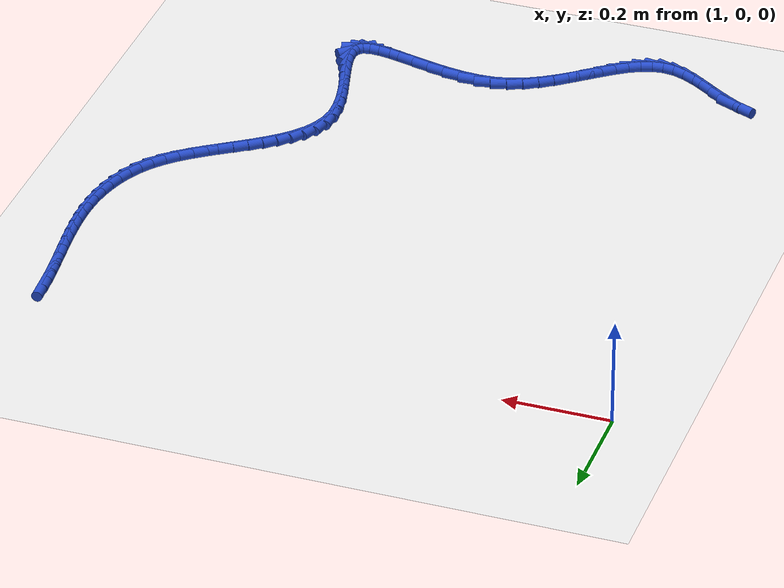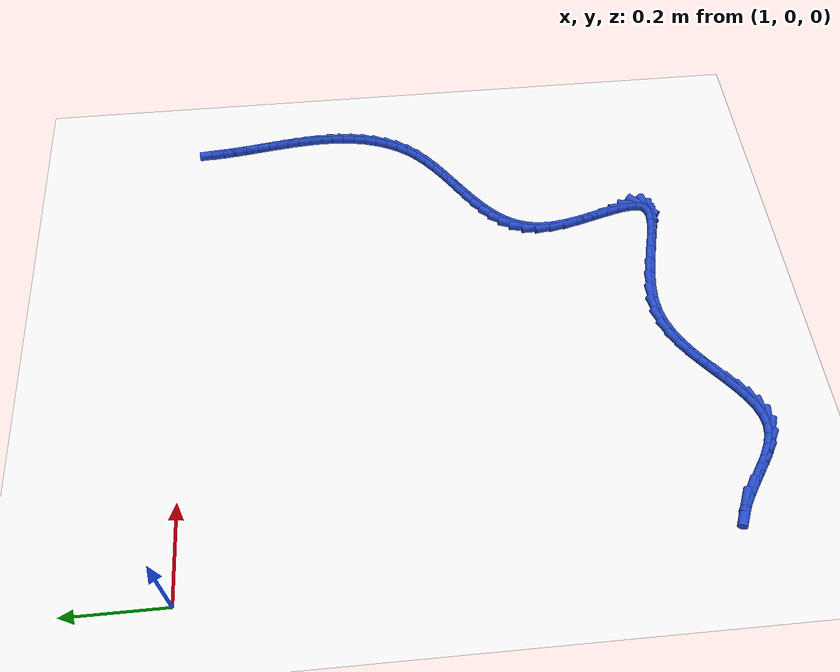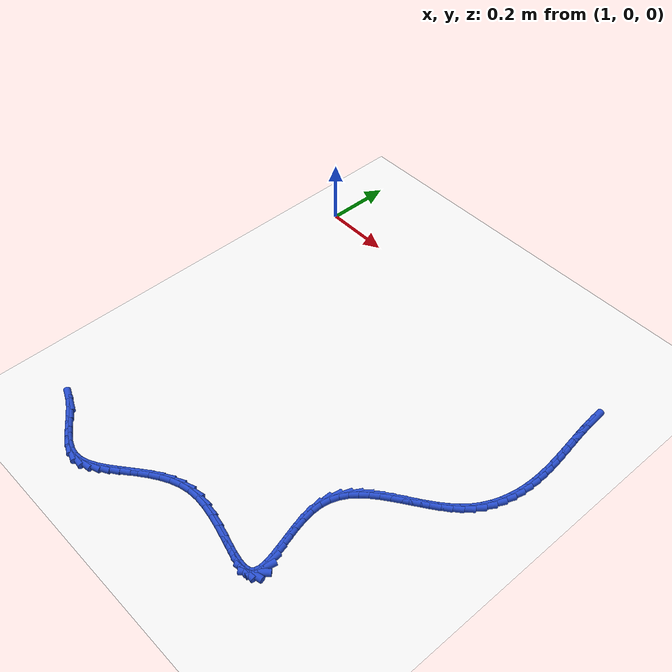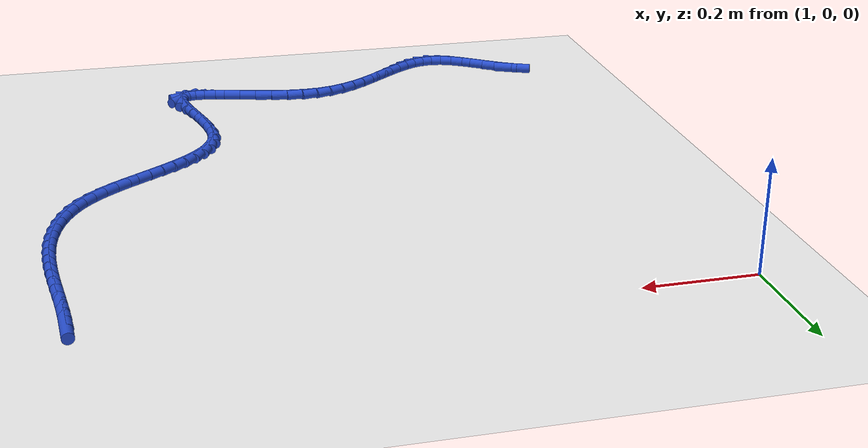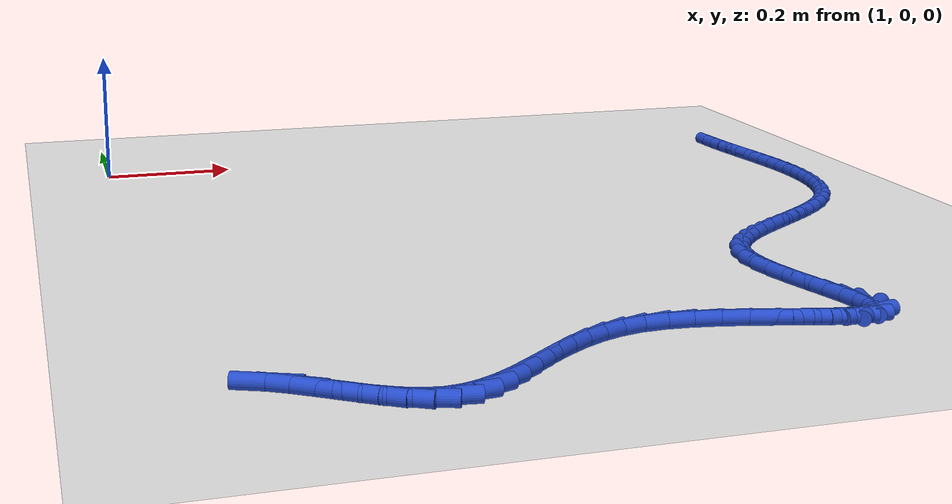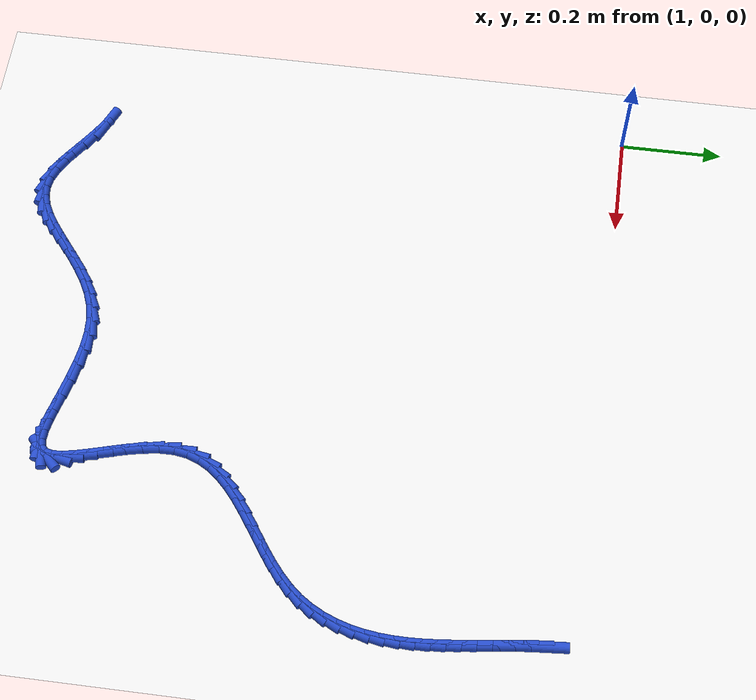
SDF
<sdf version="1.6">
 <world name="default">
  <model name="ground_plane">
   <static>1</static>
   <link name="link">
    <collision name="collision">
     <geometry><plane><normal>0 0 1</normal><size>100 100</size></plane></geometry>
     <surface><friction><ode><mu>100</mu><mu2>50</mu2></ode></friction></surface>
    </collision>
    <visual name="visual">
     <cast_shadows>0</cast_shadows>
     <geometry><plane><normal>0 0 1</normal><size>100 100</size></plane></geometry>
     <material>
      <script><uri>file://media/materials/scripts/gazebo.material</uri><name>Gazebo/WhiteGlow</name></script>
     </material>
    </visual>
   </link>
  </model>
  <model name="line">
   <link name="link_137">
    <pose>2.0745335759756256 -0.06236355920596012 0.01 0 1.57 -1.4945938777242755</pose>
    <collision name="collision">
     <geometry><cylinder><radius>0.01</radius><length>0.08</length></cylinder></geometry>
    </collision>
    <visual name="visual">
     <material>
      <script><name>Gazebo/Blue</name><uri>file://media/materials/scripts/gazebo.material</uri></script>
     </material>
     <geometry><cylinder><radius>0.01</radius><length>0.08</length></cylinder></geometry>
    </visual>
   </link>
   <link name="link_138">
    <pose>2.0765773488030557 -0.08913192930859712 0.01 0 1.57 -1.4675413451723505</pose>
    <collision name="collision">
     <geometry><cylinder><radius>0.01</radius><length>0.08</length></cylinder></geometry>
    </collision>
    <visual name="visual">
     <material>
      <script><name>Gazebo/Blue</name><uri>file://media/materials/scripts/gazebo.material</uri></script>
     </material>
     <geometry><cylinder><radius>0.01</radius><length>0.08</length></cylinder></geometry>
    </visual>
   </link>
   <link name="link_139">
    <pose>2.079357193971397 -0.1159583245571494 0.01 0 1.57 -1.4496637124600082</pose>
    <collision name="collision">
     <geometry><cylinder><radius>0.01</radius><length>0.08</length></cylinder></geometry>
    </collision>
    <visual name="visual">
     <material>
      <script><name>Gazebo/Blue</name><uri>file://media/materials/scripts/gazebo.material</uri></script>
     </material>
     <geometry><cylinder><radius>0.01</radius><length>0.08</length></cylinder></geometry>
    </visual>
   </link>
   <link name="link_140">
    <pose>2.082626961753343 -0.14281946001180876 0.01 0 1.57 -1.4407857080998465</pose>
    <collision name="collision">
     <geometry><cylinder><radius>0.01</radius><length>0.08</length></cylinder></geometry>
    </collision>
    <visual name="visual">
     <material>
      <script><name>Gazebo/Blue</name><uri>file://media/materials/scripts/gazebo.material</uri></script>
     </material>
     <geometry><cylinder><radius>0.01</radius><length>0.08</length></cylinder></geometry>
    </visual>
   </link>
   <link name="link_141">
    <pose>2.0861405024215856 -0.1696920507327658 0.01 0 1.57 -1.4408160938373828</pose>
    <collision name="collision">
     <geometry><cylinder><radius>0.01</radius><length>0.08</length></cylinder></geometry>
    </collision>
    <visual name="visual">
     <material>
      <script><name>Gazebo/Blue</name><uri>file://media/materials/scripts/gazebo.material</uri></script>
     </material>
     <geometry><cylinder><radius>0.01</radius><length>0.08</length></cylinder></geometry>
    </visual>
   </link>
   <link name="link_142">
    <pose>2.0896516662488165 -0.1965528117802123 0.01 0 1.57 -1.4497669529349773</pose>
    <collision name="collision">
     <geometry><cylinder><radius>0.01</radius><length>0.08</length></cylinder></geometry>
    </collision>
    <visual name="visual">
     <material>
      <script><name>Gazebo/Blue</name><uri>file://media/materials/scripts/gazebo.material</uri></script>
     </material>
     <geometry><cylinder><radius>0.01</radius><length>0.08</length></cylinder></geometry>
    </visual>
   </link>
   <link name="link_143">
    <pose>2.092914303507729 -0.22337845821433977 0.01 0 1.57 -1.4677540689173079</pose>
    <collision name="collision">
     <geometry><cylinder><radius>0.01</radius><length>0.08</length></cylinder></geometry>
    </collision>
    <visual name="visual">
     <material>
      <script><name>Gazebo/Blue</name><uri>file://media/materials/scripts/gazebo.material</uri></script>
     </material>
     <geometry><cylinder><radius>0.01</radius><length>0.08</length></cylinder></geometry>
    </visual>
   </link>
   <link name="link_144">
    <pose>2.095682264471015 -0.2501457050953394 0.01 0 1.57 -1.4949782057749854</pose>
    <collision name="collision">
     <geometry><cylinder><radius>0.01</radius><length>0.08</length></cylinder></geometry>
    </collision>
    <visual name="visual">
     <material>
      <script><name>Gazebo/Blue</name><uri>file://media/materials/scripts/gazebo.material</uri></script>
     </material>
     <geometry><cylinder><radius>0.01</radius><length>0.08</length></cylinder></geometry>
    </visual>
   </link>
   <link name="link_145">
    <pose>2.097709399411366 -0.27683126748340275 0.01 0 1.57 -1.531684003943477</pose>
    <collision name="collision">
     <geometry><cylinder><radius>0.01</radius><length>0.08</length></cylinder></geometry>
    </collision>
    <visual name="visual">
     <material>
      <script><name>Gazebo/Blue</name><uri>file://media/materials/scripts/gazebo.material</uri></script>
     </material>
     <geometry><cylinder><radius>0.01</radius><length>0.08</length></cylinder></geometry>
    </visual>
   </link>
   <link name="link_146">
    <pose>2.098749558601476 -0.30341186043872204 0.01 0 1.57 1.5635015893545938</pose>
    <collision name="collision">
     <geometry><cylinder><radius>0.01</radius><length>0.08</length></cylinder></geometry>
    </collision>
    <visual name="visual">
     <material>
      <script><name>Gazebo/Blue</name><uri>file://media/materials/scripts/gazebo.material</uri></script>
     </material>
     <geometry><cylinder><radius>0.01</radius><length>0.08</length></cylinder></geometry>
    </visual>
   </link>
   <link name="link_147">
    <pose>2.0985565923140364 -0.329864199021487 0.01 0 1.57 1.507300403059409</pose>
    <collision name="collision">
     <geometry><cylinder><radius>0.01</radius><length>0.08</length></cylinder></geometry>
    </collision>
    <visual name="visual">
     <material>
      <script><name>Gazebo/Blue</name><uri>file://media/materials/scripts/gazebo.material</uri></script>
     </material>
     <geometry><cylinder><radius>0.01</radius><length>0.08</length></cylinder></geometry>
    </visual>
   </link>
   <link name="link_148">
    <pose>2.0968843508217394 -0.35616499829188975 0.01 0 1.57 1.4414727798368918</pose>
    <collision name="collision">
     <geometry><cylinder><radius>0.01</radius><length>0.08</length></cylinder></geometry>
    </collision>
    <visual name="visual">
     <material>
      <script><name>Gazebo/Blue</name><uri>file://media/materials/scripts/gazebo.material</uri></script>
     </material>
     <geometry><cylinder><radius>0.01</radius><length>0.08</length></cylinder></geometry>
    </visual>
   </link>
   <link name="link_149">
    <pose>2.093486684397278 -0.3822909733101218 0.01 0 1.57 1.3666255447218387</pose>
    <collision name="collision">
     <geometry><cylinder><radius>0.01</radius><length>0.08</length></cylinder></geometry>
    </collision>
    <visual name="visual">
     <material>
      <script><name>Gazebo/Blue</name><uri>file://media/materials/scripts/gazebo.material</uri></script>
     </material>
     <geometry><cylinder><radius>0.01</radius><length>0.08</length></cylinder></geometry>
    </visual>
   </link>
   <link name="link_150">
    <pose>2.0881196257879533 -0.4082117927885201 0.01 0 1.57 1.2838967339224017</pose>
    <collision name="collision">
     <geometry><cylinder><radius>0.01</radius><length>0.08</length></cylinder></geometry>
    </collision>
    <visual name="visual">
     <material>
      <script><name>Gazebo/Blue</name><uri>file://media/materials/scripts/gazebo.material</uri></script>
     </material>
     <geometry><cylinder><radius>0.01</radius><length>0.08</length></cylinder></geometry>
    </visual>
   </link>
   <link name="link_151">
    <pose>2.0805862826034613 -0.43374513931588143 0.01 0 1.57 1.1929212636502478</pose>
    <collision name="collision">
     <geometry><cylinder><radius>0.01</radius><length>0.08</length></cylinder></geometry>
    </collision>
    <visual name="visual">
     <material>
      <script><name>Gazebo/Blue</name><uri>file://media/materials/scripts/gazebo.material</uri></script>
     </material>
     <geometry><cylinder><radius>0.01</radius><length>0.08</length></cylinder></geometry>
    </visual>
   </link>
   <link name="link_152">
    <pose>2.0707351655181547 -0.45856210693154487 0.01 0 1.57 1.0925908687111168</pose>
    <collision name="collision">
     <geometry><cylinder><radius>0.01</radius><length>0.08</length></cylinder></geometry>
    </collision>
    <visual name="visual">
     <material>
      <script><name>Gazebo/Blue</name><uri>file://media/materials/scripts/gazebo.material</uri></script>
     </material>
     <geometry><cylinder><radius>0.01</radius><length>0.08</length></cylinder></geometry>
    </visual>
   </link>
   <link name="link_153">
    <pose>2.0584166331843936 -0.4823278232843032 0.01 0 1.57 0.9823032446369511</pose>
    <collision name="collision">
     <geometry><cylinder><radius>0.01</radius><length>0.08</length></cylinder></geometry>
    </collision>
    <visual name="visual">
     <material>
      <script><name>Gazebo/Blue</name><uri>file://media/materials/scripts/gazebo.material</uri></script>
     </material>
     <geometry><cylinder><radius>0.01</radius><length>0.08</length></cylinder></geometry>
    </visual>
   </link>
   <link name="link_154">
    <pose>2.0434810442545412 -0.5047074160229496 0.01 0 1.57 0.8655611623064244</pose>
    <collision name="collision">
     <geometry><cylinder><radius>0.01</radius><length>0.08</length></cylinder></geometry>
    </collision>
    <visual name="visual">
     <material>
      <script><name>Gazebo/Blue</name><uri>file://media/materials/scripts/gazebo.material</uri></script>
     </material>
     <geometry><cylinder><radius>0.01</radius><length>0.08</length></cylinder></geometry>
    </visual>
   </link>
   <link name="link_155">
    <pose>2.0258436305837217 -0.525426179032048 0.01 0 1.57 0.7657281394973803</pose>
    <collision name="collision">
     <geometry><cylinder><radius>0.01</radius><length>0.08</length></cylinder></geometry>
    </collision>
    <visual name="visual">
     <material>
      <script><name>Gazebo/Blue</name><uri>file://media/materials/scripts/gazebo.material</uri></script>
     </material>
     <geometry><cylinder><radius>0.01</radius><length>0.08</length></cylinder></geometry>
    </visual>
   </link>
   <link name="link_156">
    <pose>2.005871059837162 -0.544628087442473 0.01 0 1.57 0.6915455375175421</pose>
    <collision name="collision">
     <geometry><cylinder><radius>0.01</radius><length>0.08</length></cylinder></geometry>
    </collision>
    <visual name="visual">
     <material>
      <script><name>Gazebo/Blue</name><uri>file://media/materials/scripts/gazebo.material</uri></script>
     </material>
     <geometry><cylinder><radius>0.01</radius><length>0.08</length></cylinder></geometry>
    </visual>
   </link>
   <link name="link_157">
    <pose>1.9841218685797717 -0.5626350639653599 0.01 0 1.57 0.6409796865034896</pose>
    <collision name="collision">
     <geometry><cylinder><radius>0.01</radius><length>0.08</length></cylinder></geometry>
    </collision>
    <visual name="visual">
     <material>
      <script><name>Gazebo/Blue</name><uri>file://media/materials/scripts/gazebo.material</uri></script>
     </material>
     <geometry><cylinder><radius>0.01</radius><length>0.08</length></cylinder></geometry>
    </visual>
   </link>
   <link name="link_158">
    <pose>1.961155295473695 -0.5797696824674169 0.01 0 1.57 0.6120750243569582</pose>
    <collision name="collision">
     <geometry><cylinder><radius>0.01</radius><length>0.08</length></cylinder></geometry>
    </collision>
    <visual name="visual">
     <material>
      <script><name>Gazebo/Blue</name><uri>file://media/materials/scripts/gazebo.material</uri></script>
     </material>
     <geometry><cylinder><radius>0.01</radius><length>0.08</length></cylinder></geometry>
    </visual>
   </link>
   <link name="link_159">
    <pose>1.9375305791810735 -0.5963545168153512 0.01 0 1.57 0.6036495256506235</pose>
    <collision name="collision">
     <geometry><cylinder><radius>0.01</radius><length>0.08</length></cylinder></geometry>
    </collision>
    <visual name="visual">
     <material>
      <script><name>Gazebo/Blue</name><uri>file://media/materials/scripts/gazebo.material</uri></script>
     </material>
     <geometry><cylinder><radius>0.01</radius><length>0.08</length></cylinder></geometry>
    </visual>
   </link>
   <link name="link_160">
    <pose>1.9138069583640493 -0.612712140875871 0.01 0 1.57 0.6155759876270306</pose>
    <collision name="collision">
     <geometry><cylinder><radius>0.01</radius><length>0.08</length></cylinder></geometry>
    </collision>
    <visual name="visual">
     <material>
      <script><name>Gazebo/Blue</name><uri>file://media/materials/scripts/gazebo.material</uri></script>
     </material>
     <geometry><cylinder><radius>0.01</radius><length>0.08</length></cylinder></geometry>
    </visual>
   </link>
   <link name="link_161">
    <pose>1.8905436716847646 -0.6291651285156834 0.01 0 1.57 0.648892355923633</pose>
    <collision name="collision">
     <geometry><cylinder><radius>0.01</radius><length>0.08</length></cylinder></geometry>
    </collision>
    <visual name="visual">
     <material>
      <script><name>Gazebo/Blue</name><uri>file://media/materials/scripts/gazebo.material</uri></script>
     </material>
     <geometry><cylinder><radius>0.01</radius><length>0.08</length></cylinder></geometry>
    </visual>
   </link>
   <link name="link_162">
    <pose>1.8682999578053607 -0.646036053601496 0.01 0 1.57 0.7057925013628743</pose>
    <collision name="collision">
     <geometry><cylinder><radius>0.01</radius><length>0.08</length></cylinder></geometry>
    </collision>
    <visual name="visual">
     <material>
      <script><name>Gazebo/Blue</name><uri>file://media/materials/scripts/gazebo.material</uri></script>
     </material>
     <geometry><cylinder><radius>0.01</radius><length>0.08</length></cylinder></geometry>
    </visual>
   </link>
   <link name="link_163">
    <pose>1.8476350553879815 -0.663647490000017 0.01 0 1.57 0.7893676003772085</pose>
    <collision name="collision">
     <geometry><cylinder><radius>0.01</radius><length>0.08</length></cylinder></geometry>
    </collision>
    <visual name="visual">
     <material>
      <script><name>Gazebo/Blue</name><uri>file://media/materials/scripts/gazebo.material</uri></script>
     </material>
     <geometry><cylinder><radius>0.01</radius><length>0.08</length></cylinder></geometry>
    </visual>
   </link>
   <link name="link_164">
    <pose>1.8291082030947674 -0.6823220115779541 0.01 0 1.57 0.902734851250536</pose>
    <collision name="collision">
     <geometry><cylinder><radius>0.01</radius><length>0.08</length></cylinder></geometry>
    </collision>
    <visual name="visual">
     <material>
      <script><name>Gazebo/Blue</name><uri>file://media/materials/scripts/gazebo.material</uri></script>
     </material>
     <geometry><cylinder><radius>0.01</radius><length>0.08</length></cylinder></geometry>
    </visual>
   </link>
   <link name="link_165">
    <pose>1.8132786395878622 -0.7023821922020141 0.01 0 1.57 1.0470240381447347</pose>
    <collision name="collision">
     <geometry><cylinder><radius>0.01</radius><length>0.08</length></cylinder></geometry>
    </collision>
    <visual name="visual">
     <material>
      <script><name>Gazebo/Blue</name><uri>file://media/materials/scripts/gazebo.material</uri></script>
     </material>
     <geometry><cylinder><radius>0.01</radius><length>0.08</length></cylinder></geometry>
    </visual>
   </link>
   <link name="link_166">
    <pose>1.8007056035294073 -0.7241506057389051 0.01 0 1.57 1.2182079229833485</pose>
    <collision name="collision">
     <geometry><cylinder><radius>0.01</radius><length>0.08</length></cylinder></geometry>
    </collision>
    <visual name="visual">
     <material>
      <script><name>Gazebo/Blue</name><uri>file://media/materials/scripts/gazebo.material</uri></script>
     </material>
     <geometry><cylinder><radius>0.01</radius><length>0.08</length></cylinder></geometry>
    </visual>
   </link>
   <link name="link_167">
    <pose>1.7919483335815458 -0.7479498260553349 0.01 0 1.57 1.4047735519644224</pose>
    <collision name="collision">
     <geometry><cylinder><radius>0.01</radius><length>0.08</length></cylinder></geometry>
    </collision>
    <visual name="visual">
     <material>
      <script><name>Gazebo/Blue</name><uri>file://media/materials/scripts/gazebo.material</uri></script>
     </material>
     <geometry><cylinder><radius>0.01</radius><length>0.08</length></cylinder></geometry>
    </visual>
   </link>
   <link name="link_168">
    <pose>1.7875660684064185 -0.7741024270180109 0.01 0 1.57 -1.559645621369168</pose>
    <collision name="collision">
     <geometry><cylinder><radius>0.01</radius><length>0.08</length></cylinder></geometry>
    </collision>
    <visual name="visual">
     <material>
      <script><name>Gazebo/Blue</name><uri>file://media/materials/scripts/gazebo.material</uri></script>
     </material>
     <geometry><cylinder><radius>0.01</radius><length>0.08</length></cylinder></geometry>
    </visual>
   </link>
   <link name="link_169">
    <pose>1.7878856354129897 -0.8027601441275743 0.01 0 1.57 -1.4349099387202604</pose>
    <collision name="collision">
     <geometry><cylinder><radius>0.01</radius><length>0.08</length></cylinder></geometry>
    </collision>
    <visual name="visual">
     <material>
      <script><name>Gazebo/Blue</name><uri>file://media/materials/scripts/gazebo.material</uri></script>
     </material>
     <geometry><cylinder><radius>0.01</radius><length>0.08</length></cylinder></geometry>
    </visual>
   </link>
   <link name="link_170">
    <pose>1.7920480662846836 -0.8332030709074852 0.01 0 1.57 -1.3573539769966743</pose>
    <collision name="collision">
     <geometry><cylinder><radius>0.01</radius><length>0.08</length></cylinder></geometry>
    </collision>
    <visual name="visual">
     <material>
      <script><name>Gazebo/Blue</name><uri>file://media/materials/scripts/gazebo.material</uri></script>
     </material>
     <geometry><cylinder><radius>0.01</radius><length>0.08</length></cylinder></geometry>
    </visual>
   </link>
   <link name="link_171">
    <pose>1.7988171832416562 -0.8644340258031333 0.01 0 1.57 -1.3142003395236406</pose>
    <collision name="collision">
     <geometry><cylinder><radius>0.01</radius><length>0.08</length></cylinder></geometry>
    </collision>
    <visual name="visual">
     <material>
      <script><name>Gazebo/Blue</name><uri>file://media/materials/scripts/gazebo.material</uri></script>
     </material>
     <geometry><cylinder><radius>0.01</radius><length>0.08</length></cylinder></geometry>
    </visual>
   </link>
   <link name="link_172">
    <pose>1.8069566505353076 -0.8954557111419326 0.01 0 1.57 -1.3001140200780574</pose>
    <collision name="collision">
     <geometry><cylinder><radius>0.01</radius><length>0.08</length></cylinder></geometry>
    </collision>
    <visual name="visual">
     <material>
      <script><name>Gazebo/Blue</name><uri>file://media/materials/scripts/gazebo.material</uri></script>
     </material>
     <geometry><cylinder><radius>0.01</radius><length>0.08</length></cylinder></geometry>
    </visual>
   </link>
   <link name="link_173">
    <pose>1.8152301324170386 -0.9252708292512986 0.01 0 1.57 -1.3166917089074501</pose>
    <collision name="collision">
     <geometry><cylinder><radius>0.01</radius><length>0.08</length></cylinder></geometry>
    </collision>
    <visual name="visual">
     <material>
      <script><name>Gazebo/Blue</name><uri>file://media/materials/scripts/gazebo.material</uri></script>
     </material>
     <geometry><cylinder><radius>0.01</radius><length>0.08</length></cylinder></geometry>
    </visual>
   </link>
   <link name="link_174">
    <pose>1.822401293138247 -0.9528820824586424 0.01 0 1.57 -1.375351945133391</pose>
    <collision name="collision">
     <geometry><cylinder><radius>0.01</radius><length>0.08</length></cylinder></geometry>
    </collision>
    <visual name="visual">
     <material>
      <script><name>Gazebo/Blue</name><uri>file://media/materials/scripts/gazebo.material</uri></script>
     </material>
     <geometry><cylinder><radius>0.01</radius><length>0.08</length></cylinder></geometry>
    </visual>
   </link>
   <link name="link_175">
    <pose>1.8272337969503336 -0.9772921730913797 0.01 0 1.57 -1.5086592162196222</pose>
    <collision name="collision">
     <geometry><cylinder><radius>0.01</radius><length>0.08</length></cylinder></geometry>
    </collision>
    <visual name="visual">
     <material>
      <script><name>Gazebo/Blue</name><uri>file://media/materials/scripts/gazebo.material</uri></script>
     </material>
     <geometry><cylinder><radius>0.01</radius><length>0.08</length></cylinder></geometry>
    </visual>
   </link>
   <link name="link_176">
    <pose>1.828491308104698 -0.9975038034769244 0.01 0 1.57 1.3384016794537044</pose>
    <collision name="collision">
     <geometry><cylinder><radius>0.01</radius><length>0.08</length></cylinder></geometry>
    </collision>
    <visual name="visual">
     <material>
      <script><name>Gazebo/Blue</name><uri>file://media/materials/scripts/gazebo.material</uri></script>
     </material>
     <geometry><cylinder><radius>0.01</radius><length>0.08</length></cylinder></geometry>
    </visual>
   </link>
   <link name="link_177">
    <pose>1.8249374908527396 -1.01251967594269 0.01 0 1.57 0.7641122443018337</pose>
    <collision name="collision">
     <geometry><cylinder><radius>0.01</radius><length>0.08</length></cylinder></geometry>
    </collision>
    <visual name="visual">
     <material>
      <script><name>Gazebo/Blue</name><uri>file://media/materials/scripts/gazebo.material</uri></script>
     </material>
     <geometry><cylinder><radius>0.01</radius><length>0.08</length></cylinder></geometry>
    </visual>
   </link>
   <link name="link_178">
    <pose>1.8155264959123851 -1.0215383198235188 0.01 0 1.57 0.231039200783923</pose>
    <collision name="collision">
     <geometry><cylinder><radius>0.01</radius><length>0.08</length></cylinder></geometry>
    </collision>
    <visual name="visual">
     <material>
      <script><name>Gazebo/Blue</name><uri>file://media/materials/scripts/gazebo.material</uri></script>
     </material>
     <geometry><cylinder><radius>0.01</radius><length>0.08</length></cylinder></geometry>
    </visual>
   </link>
   <link name="link_179">
    <pose>1.8004930829073578 -1.0250747769303425 0.01 0 1.57 -0.04461706613141823</pose>
    <collision name="collision">
     <geometry><cylinder><radius>0.01</radius><length>0.08</length></cylinder></geometry>
    </collision>
    <visual name="visual">
     <material>
      <script><name>Gazebo/Blue</name><uri>file://media/materials/scripts/gazebo.material</uri></script>
     </material>
     <geometry><cylinder><radius>0.01</radius><length>0.08</length></cylinder></geometry>
    </visual>
   </link>
   <link name="link_180">
    <pose>1.7805997315772453 -1.0241866045237928 0.01 0 1.57 -0.17548756314425049</pose>
    <collision name="collision">
     <geometry><cylinder><radius>0.01</radius><length>0.08</length></cylinder></geometry>
    </collision>
    <visual name="visual">
     <material>
      <script><name>Gazebo/Blue</name><uri>file://media/materials/scripts/gazebo.material</uri></script>
     </material>
     <geometry><cylinder><radius>0.01</radius><length>0.08</length></cylinder></geometry>
    </visual>
   </link>
   <link name="link_181">
    <pose>1.756610566134944 -1.0199330504428006 0.01 0 1.57 -0.23563782092709876</pose>
    <collision name="collision">
     <geometry><cylinder><radius>0.01</radius><length>0.08</length></cylinder></geometry>
    </collision>
    <visual name="visual">
     <material>
      <script><name>Gazebo/Blue</name><uri>file://media/materials/scripts/gazebo.material</uri></script>
     </material>
     <geometry><cylinder><radius>0.01</radius><length>0.08</length></cylinder></geometry>
    </visual>
   </link>
   <link name="link_182">
    <pose>1.7292897107933516 -1.0133733625262993 0.01 0 1.57 -0.25548292432972836</pose>
    <collision name="collision">
     <geometry><cylinder><radius>0.01</radius><length>0.08</length></cylinder></geometry>
    </collision>
    <visual name="visual">
     <material>
      <script><name>Gazebo/Blue</name><uri>file://media/materials/scripts/gazebo.material</uri></script>
     </material>
     <geometry><cylinder><radius>0.01</radius><length>0.08</length></cylinder></geometry>
    </visual>
   </link>
   <link name="link_183">
    <pose>1.6994012897653654 -1.0055667886132207 0.01 0 1.57 -0.24709339926316118</pose>
    <collision name="collision">
     <geometry><cylinder><radius>0.01</radius><length>0.08</length></cylinder></geometry>
    </collision>
    <visual name="visual">
     <material>
      <script><name>Gazebo/Blue</name><uri>file://media/materials/scripts/gazebo.material</uri></script>
     </material>
     <geometry><cylinder><radius>0.01</radius><length>0.08</length></cylinder></geometry>
    </visual>
   </link>
   <link name="link_184">
    <pose>1.6677094272638822 -0.9975725765424973 0.01 0 1.57 -0.21426863622135844</pose>
    <collision name="collision">
     <geometry><cylinder><radius>0.01</radius><length>0.08</length></cylinder></geometry>
    </collision>
    <visual name="visual">
     <material>
      <script><name>Gazebo/Blue</name><uri>file://media/materials/scripts/gazebo.material</uri></script>
     </material>
     <geometry><cylinder><radius>0.01</radius><length>0.08</length></cylinder></geometry>
    </visual>
   </link>
   <link name="link_185">
    <pose>1.6349782475017978 -0.9904499741530614 0.01 0 1.57 -0.1560168948359555</pose>
    <collision name="collision">
     <geometry><cylinder><radius>0.01</radius><length>0.08</length></cylinder></geometry>
    </collision>
    <visual name="visual">
     <material>
      <script><name>Gazebo/Blue</name><uri>file://media/materials/scripts/gazebo.material</uri></script>
     </material>
     <geometry><cylinder><radius>0.01</radius><length>0.08</length></cylinder></geometry>
    </visual>
   </link>
   <link name="link_186">
    <pose>1.60197187469201 -0.9852582292838449 0.01 0 1.57 -0.06760324306101652</pose>
    <collision name="collision">
     <geometry><cylinder><radius>0.01</radius><length>0.08</length></cylinder></geometry>
    </collision>
    <visual name="visual">
     <material>
      <script><name>Gazebo/Blue</name><uri>file://media/materials/scripts/gazebo.material</uri></script>
     </material>
     <geometry><cylinder><radius>0.01</radius><length>0.08</length></cylinder></geometry>
    </visual>
   </link>
   <link name="link_187">
    <pose>1.5694544330474154 -0.9830565897737802 0.01 0 1.57 0.05903090746214758</pose>
    <collision name="collision">
     <geometry><cylinder><radius>0.01</radius><length>0.08</length></cylinder></geometry>
    </collision>
    <visual name="visual">
     <material>
      <script><name>Gazebo/Blue</name><uri>file://media/materials/scripts/gazebo.material</uri></script>
     </material>
     <geometry><cylinder><radius>0.01</radius><length>0.08</length></cylinder></geometry>
    </visual>
   </link>
   <link name="link_188">
    <pose>1.538190045861212 -0.984904301627875 0.01 0 1.57 0.22103789673171736</pose>
    <collision name="collision">
     <geometry><cylinder><radius>0.01</radius><length>0.08</length></cylinder></geometry>
    </collision>
    <visual name="visual">
     <material>
      <script><name>Gazebo/Blue</name><uri>file://media/materials/scripts/gazebo.material</uri></script>
     </material>
     <geometry><cylinder><radius>0.01</radius><length>0.08</length></cylinder></geometry>
    </visual>
   </link>
   <link name="link_189">
    <pose>1.5087696835721767 -0.9915153357136646 0.01 0 1.57 0.37180728497575216</pose>
    <collision name="collision">
     <geometry><cylinder><radius>0.01</radius><length>0.08</length></cylinder></geometry>
    </collision>
    <visual name="visual">
     <material>
      <script><name>Gazebo/Blue</name><uri>file://media/materials/scripts/gazebo.material</uri></script>
     </material>
     <geometry><cylinder><radius>0.01</radius><length>0.08</length></cylinder></geometry>
    </visual>
   </link>
   <link name="link_190">
    <pose>1.48112762360619 -1.0022941853791587 0.01 0 1.57 0.49379078963458845</pose>
    <collision name="collision">
     <geometry><cylinder><radius>0.01</radius><length>0.08</length></cylinder></geometry>
    </collision>
    <visual name="visual">
     <material>
      <script><name>Gazebo/Blue</name><uri>file://media/materials/scripts/gazebo.material</uri></script>
     </material>
     <geometry><cylinder><radius>0.01</radius><length>0.08</length></cylinder></geometry>
    </visual>
   </link>
   <link name="link_191">
    <pose>1.4550424886638977 -1.016334960947877 0.01 0 1.57 0.5851183423954476</pose>
    <collision name="collision">
     <geometry><cylinder><radius>0.01</radius><length>0.08</length></cylinder></geometry>
    </collision>
    <visual name="visual">
     <material>
      <script><name>Gazebo/Blue</name><uri>file://media/materials/scripts/gazebo.material</uri></script>
     </material>
     <geometry><cylinder><radius>0.01</radius><length>0.08</length></cylinder></geometry>
    </visual>
   </link>
   <link name="link_192">
    <pose>1.4302929014459445 -1.0327317727433385 0.01 0 1.57 0.6467532227766762</pose>
    <collision name="collision">
     <geometry><cylinder><radius>0.01</radius><length>0.08</length></cylinder></geometry>
    </collision>
    <visual name="visual">
     <material>
      <script><name>Gazebo/Blue</name><uri>file://media/materials/scripts/gazebo.material</uri></script>
     </material>
     <geometry><cylinder><radius>0.01</radius><length>0.08</length></cylinder></geometry>
    </visual>
   </link>
   <link name="link_193">
    <pose>1.4066574846529754 -1.0505787310890642 0.01 0 1.57 0.6800035595034659</pose>
    <collision name="collision">
     <geometry><cylinder><radius>0.01</radius><length>0.08</length></cylinder></geometry>
    </collision>
    <visual name="visual">
     <material>
      <script><name>Gazebo/Blue</name><uri>file://media/materials/scripts/gazebo.material</uri></script>
     </material>
     <geometry><cylinder><radius>0.01</radius><length>0.08</length></cylinder></geometry>
    </visual>
   </link>
   <link name="link_194">
    <pose>1.3839148609856349 -1.0689699463085736 0.01 0 1.57 0.6849506828887902</pose>
    <collision name="collision">
     <geometry><cylinder><radius>0.01</radius><length>0.08</length></cylinder></geometry>
    </collision>
    <visual name="visual">
     <material>
      <script><name>Gazebo/Blue</name><uri>file://media/materials/scripts/gazebo.material</uri></script>
     </material>
     <geometry><cylinder><radius>0.01</radius><length>0.08</length></cylinder></geometry>
    </visual>
   </link>
   <link name="link_195">
    <pose>1.361843653144568 -1.086999528725386 0.01 0 1.57 0.6594734150733697</pose>
    <collision name="collision">
     <geometry><cylinder><radius>0.01</radius><length>0.08</length></cylinder></geometry>
    </collision>
    <visual name="visual">
     <material>
      <script><name>Gazebo/Blue</name><uri>file://media/materials/scripts/gazebo.material</uri></script>
     </material>
     <geometry><cylinder><radius>0.01</radius><length>0.08</length></cylinder></geometry>
    </visual>
   </link>
   <link name="link_196">
    <pose>1.34022248383042 -1.103761588663022 0.01 0 1.57 0.5985097319027984</pose>
    <collision name="collision">
     <geometry><cylinder><radius>0.01</radius><length>0.08</length></cylinder></geometry>
    </collision>
    <visual name="visual">
     <material>
      <script><name>Gazebo/Blue</name><uri>file://media/materials/scripts/gazebo.material</uri></script>
     </material>
     <geometry><cylinder><radius>0.01</radius><length>0.08</length></cylinder></geometry>
    </visual>
   </link>
   <link name="link_197">
    <pose>1.3188299757438358 -1.1183502364450015 0.01 0 1.57 0.4937320065602122</pose>
    <collision name="collision">
     <geometry><cylinder><radius>0.01</radius><length>0.08</length></cylinder></geometry>
    </collision>
    <visual name="visual">
     <material>
      <script><name>Gazebo/Blue</name><uri>file://media/materials/scripts/gazebo.material</uri></script>
     </material>
     <geometry><cylinder><radius>0.01</radius><length>0.08</length></cylinder></geometry>
    </visual>
   </link>
   <link name="link_198">
    <pose>1.2974447515854606 -1.1298595823948445 0.01 0 1.57 0.335205459253563</pose>
    <collision name="collision">
     <geometry><cylinder><radius>0.01</radius><length>0.08</length></cylinder></geometry>
    </collision>
    <visual name="visual">
     <material>
      <script><name>Gazebo/Blue</name><uri>file://media/materials/scripts/gazebo.material</uri></script>
     </material>
     <geometry><cylinder><radius>0.01</radius><length>0.08</length></cylinder></geometry>
    </visual>
   </link>
   <link name="link_199">
    <pose>1.2758454340559382 -1.1373837368360706 0.01 0 1.57 0.11893223917389831</pose>
    <collision name="collision">
     <geometry><cylinder><radius>0.01</radius><length>0.08</length></cylinder></geometry>
    </collision>
    <visual name="visual">
     <material>
      <script><name>Gazebo/Blue</name><uri>file://media/materials/scripts/gazebo.material</uri></script>
     </material>
     <geometry><cylinder><radius>0.01</radius><length>0.08</length></cylinder></geometry>
    </visual>
   </link>
   <link name="link_200">
    <pose>1.2538106458559153 -1.1400168100922 0.01 0 1.57 -0.1383257087652004</pose>
    <collision name="collision">
     <geometry><cylinder><radius>0.01</radius><length>0.08</length></cylinder></geometry>
    </collision>
    <visual name="visual">
     <material>
      <script><name>Gazebo/Blue</name><uri>file://media/materials/scripts/gazebo.material</uri></script>
     </material>
     <geometry><cylinder><radius>0.01</radius><length>0.08</length></cylinder></geometry>
    </visual>
   </link>
   <link name="link_201">
    <pose>1.2311198793914182 -1.1368579205926015 0.01 0 1.57 -0.3693926747369526</pose>
    <collision name="collision">
     <geometry><cylinder><radius>0.01</radius><length>0.08</length></cylinder></geometry>
    </collision>
    <visual name="visual">
     <material>
      <script><name>Gazebo/Blue</name><uri>file://media/materials/scripts/gazebo.material</uri></script>
     </material>
     <geometry><cylinder><radius>0.01</radius><length>0.08</length></cylinder></geometry>
    </visual>
   </link>
   <link name="link_202">
    <pose>1.2076880387534492 -1.1277859405375612 0.01 0 1.57 -0.5124181494505552</pose>
    <collision name="collision">
     <geometry><cylinder><radius>0.01</radius><length>0.08</length></cylinder></geometry>
    </collision>
    <visual name="visual">
     <material>
      <script><name>Gazebo/Blue</name><uri>file://media/materials/scripts/gazebo.material</uri></script>
     </material>
     <geometry><cylinder><radius>0.01</radius><length>0.08</length></cylinder></geometry>
    </visual>
   </link>
   <link name="link_203">
    <pose>1.183711050311063 -1.1142979789956617 0.01 0 1.57 -0.5883267930416533</pose>
    <collision name="collision">
     <geometry><cylinder><radius>0.01</radius><length>0.08</length></cylinder></geometry>
    </collision>
    <visual name="visual">
     <material>
      <script><name>Gazebo/Blue</name><uri>file://media/materials/scripts/gazebo.material</uri></script>
     </material>
     <geometry><cylinder><radius>0.01</radius><length>0.08</length></cylinder></geometry>
    </visual>
   </link>
   <link name="link_204">
    <pose>1.159419795822271 -1.09809243192116 0.01 0 1.57 -0.6151860169425248</pose>
    <collision name="collision">
     <geometry><cylinder><radius>0.01</radius><length>0.08</length></cylinder></geometry>
    </collision>
    <visual name="visual">
     <material>
      <script><name>Gazebo/Blue</name><uri>file://media/materials/scripts/gazebo.material</uri></script>
     </material>
     <geometry><cylinder><radius>0.01</radius><length>0.08</length></cylinder></geometry>
    </visual>
   </link>
   <link name="link_205">
    <pose>1.1350451570450835 -1.0808676952683134 0.01 0 1.57 -0.5991799809568136</pose>
    <collision name="collision">
     <geometry><cylinder><radius>0.01</radius><length>0.08</length></cylinder></geometry>
    </collision>
    <visual name="visual">
     <material>
      <script><name>Gazebo/Blue</name><uri>file://media/materials/scripts/gazebo.material</uri></script>
     </material>
     <geometry><cylinder><radius>0.01</radius><length>0.08</length></cylinder></geometry>
    </visual>
   </link>
   <link name="link_206">
    <pose>1.110818015737512 -1.0643221649913799 0.01 0 1.57 -0.536050705707903</pose>
    <collision name="collision">
     <geometry><cylinder><radius>0.01</radius><length>0.08</length></cylinder></geometry>
    </collision>
    <visual name="visual">
     <material>
      <script><name>Gazebo/Blue</name><uri>file://media/materials/scripts/gazebo.material</uri></script>
     </material>
     <geometry><cylinder><radius>0.01</radius><length>0.08</length></cylinder></geometry>
    </visual>
   </link>
   <link name="link_207">
    <pose>1.086969253657568 -1.0501542370446173 0.01 0 1.57 -0.4096857031414678</pose>
    <collision name="collision">
     <geometry><cylinder><radius>0.01</radius><length>0.08</length></cylinder></geometry>
    </collision>
    <visual name="visual">
     <material>
      <script><name>Gazebo/Blue</name><uri>file://media/materials/scripts/gazebo.material</uri></script>
     </material>
     <geometry><cylinder><radius>0.01</radius><length>0.08</length></cylinder></geometry>
    </visual>
   </link>
  </model>
 </world>
</sdf>
